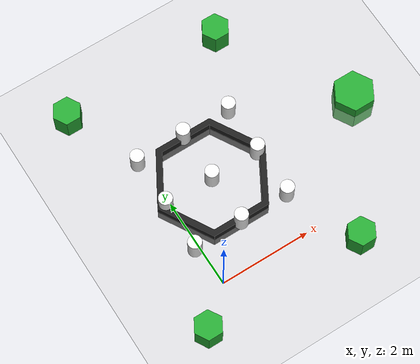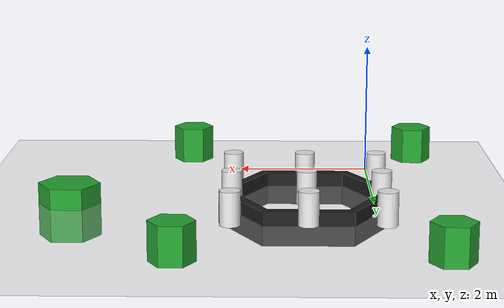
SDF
<?xml version="1.0"?>
<sdf version="1.6">
  <world name="default">

    <plugin
      filename="gz-sim-physics-system"
      name="gz::sim::systems::Physics">
    </plugin>
    <plugin
      filename="gz-sim-user-commands-system"
      name="gz::sim::systems::UserCommands">
    </plugin>
    <plugin
      filename="gz-sim-scene-broadcaster-system"
      name="gz::sim::systems::SceneBroadcaster">
    </plugin>
    <plugin
      filename="gz-sim-sensors-system"
      name="gz::sim::systems::Sensors">
      <render_engine>ogre2</render_engine>
    </plugin>
    <plugin
      filename="gz-sim-imu-system"
      name="gz::sim::systems::Imu">
    </plugin>

    <include>
      <uri>https://fuel.gazebosim.org/1.0/OpenRobotics/models/Ground Plane</uri>
    </include>

    <include>
      <uri>https://fuel.gazebosim.org/1.0/OpenRobotics/models/Sun</uri>
    </include>

    <scene>
      <shadows>false</shadows>
    </scene>

    <physics type="ode">
      <real_time_update_rate>1000.0</real_time_update_rate>
      <max_step_size>0.001</max_step_size>
      <real_time_factor>1</real_time_factor>
      <ode>
        <solver>
          <type>quick</type>
          <iters>150</iters>
          <precon_iters>0</precon_iters>
          <sor>1.400000</sor>
          <use_dynamic_moi_rescaling>1</use_dynamic_moi_rescaling>
        </solver>
        <constraints>
          <cfm>0.00001</cfm>
          <erp>0.2</erp>
          <contact_max_correcting_vel>2000.000000</contact_max_correcting_vel>
          <contact_surface_layer>0.01000</contact_surface_layer>
        </constraints>
      </ode>
    </physics>

    <!-- model://hexa resolves via GZ_SIM_RESOURCE_PATH pointing at
         ros_dd_gazebo/models (set in ros_dd.launch.py), same as before. -->
    <include>
      <uri>model://hexa</uri>
      <pose>1.0 2.0 0 0 0 0</pose>
    </include>

  </world>
</sdf>

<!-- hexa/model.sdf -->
<sdf version='1.6'>
    <!-- Draw Circle -->
    <model name='hexa'>
      <static>1</static>
      <link name='symbol'>
        <collision name='one_one'>
          <pose>-1.1 -1.1 0.25 0 0 0</pose>
          <geometry>
            <cylinder>
              <radius>0.15</radius>
              <length>0.5</length>
            </cylinder>
          </geometry>
          <max_contacts>10</max_contacts>
          <surface>
            <bounce/>
            <friction>
              <ode/>
            </friction>
            <contact>
              <ode/>
            </contact>
          </surface>
        </collision>

        <visual name='one_one'>
          <pose>-1.1 -1.1 0.25 0 0 0</pose>
          <geometry>
            <cylinder>
              <radius>0.15</radius>
              <length>0.5</length>
            </cylinder>
          </geometry>
          <material>
            <script>
              <uri>file://media/materials/scripts/gazebo.material</uri>
              <name>Gazebo/White</name>
            </script>
          </material>
        </visual>

        <collision name='one_two'>
          <pose>-1.1 0 0.25 0 0 0</pose>
          <geometry>
            <cylinder>
              <radius>0.15</radius>
              <length>0.5</length>
            </cylinder>
          </geometry>
          <max_contacts>10</max_contacts>
          <surface>
            <bounce/>
            <friction>
              <ode/>
            </friction>
            <contact>
              <ode/>
            </contact>
          </surface>
        </collision>

        <visual name='one_two'>
          <pose>-1.1 0 0.25 0 0 0</pose>
          <geometry>
            <cylinder>
              <radius>0.15</radius>
              <length>0.5</length>
            </cylinder>
          </geometry>
          <material>
            <script>
              <uri>file://media/materials/scripts/gazebo.material</uri>
              <name>Gazebo/White</name>
            </script>
          </material>
        </visual>

        <collision name='one_three'>
          <pose>-1.1 1.1 0.25 0 0 0</pose>
          <geometry>
            <cylinder>
              <radius>0.15</radius>
              <length>0.5</length>
            </cylinder>
          </geometry>
          <max_contacts>10</max_contacts>
          <surface>
            <bounce/>
            <friction>
              <ode/>
            </friction>
            <contact>
              <ode/>
            </contact>
          </surface>
        </collision>

        <visual name='one_three'>
          <pose>-1.1 1.1 0.25 0 0 0</pose>
          <geometry>
            <cylinder>
              <radius>0.15</radius>
              <length>0.5</length>
            </cylinder>
          </geometry>
          <material>
            <script>
              <uri>file://media/materials/scripts/gazebo.material</uri>
              <name>Gazebo/White</name>
            </script>
          </material>
        </visual>

        <collision name='two_one'>
          <pose>0 -1.1 0.25 0 0 0</pose>
          <geometry>
            <cylinder>
              <radius>0.15</radius>
              <length>0.5</length>
            </cylinder>
          </geometry>
          <max_contacts>10</max_contacts>
          <surface>
            <bounce/>
            <friction>
              <ode/>
            </friction>
            <contact>
              <ode/>
            </contact>
          </surface>
        </collision>

        <visual name='two_one'>
          <pose>0 -1.1 0.25 0 0 0</pose>
          <geometry>
            <cylinder>
              <radius>0.15</radius>
              <length>0.5</length>
            </cylinder>
          </geometry>
          <material>
            <script>
              <uri>file://media/materials/scripts/gazebo.material</uri>
              <name>Gazebo/White</name>
            </script>
          </material>
        </visual>

        <collision name='two_two'>
          <pose>0 0 0.25 0 0 0</pose>
          <geometry>
            <cylinder>
              <radius>0.15</radius>
              <length>0.5</length>
            </cylinder>
          </geometry>
          <max_contacts>10</max_contacts>
          <surface>
            <bounce/>
            <friction>
              <ode/>
            </friction>
            <contact>
              <ode/>
            </contact>
          </surface>
        </collision>

        <visual name='two_two'>
          <pose>0 0 0.25 0 0 0</pose>
          <geometry>
            <cylinder>
              <radius>0.15</radius>
              <length>0.5</length>
            </cylinder>
          </geometry>
          <material>
            <script>
              <uri>file://media/materials/scripts/gazebo.material</uri>
              <name>Gazebo/White</name>
            </script>
          </material>
        </visual>

        <collision name='two_three'>
          <pose>0 1.1 0.25 0 0 0</pose>
          <geometry>
            <cylinder>
              <radius>0.15</radius>
              <length>0.5</length>
            </cylinder>
          </geometry>
          <max_contacts>10</max_contacts>
          <surface>
            <bounce/>
            <friction>
              <ode/>
            </friction>
            <contact>
              <ode/>
            </contact>
          </surface>
        </collision>

        <visual name='two_three'>
          <pose>0 1.1 0.25 0 0 0</pose>
          <geometry>
            <cylinder>
              <radius>0.15</radius>
              <length>0.5</length>
            </cylinder>
          </geometry>
          <material>
            <script>
              <uri>file://media/materials/scripts/gazebo.material</uri>
              <name>Gazebo/White</name>
            </script>
          </material>
        </visual>

        <collision name='three_one'>
          <pose>1.1 -1.1 0.25 0 0 0</pose>
          <geometry>
            <cylinder>
              <radius>0.15</radius>
              <length>0.5</length>
            </cylinder>
          </geometry>
          <max_contacts>10</max_contacts>
          <surface>
            <bounce/>
            <friction>
              <ode/>
            </friction>
            <contact>
              <ode/>
            </contact>
          </surface>
        </collision>

        <visual name='three_one'>
          <pose>1.1 -1.1 0.25 0 0 0</pose>
          <geometry>
            <cylinder>
              <radius>0.15</radius>
              <length>0.5</length>
            </cylinder>
          </geometry>
          <material>
            <script>
              <uri>file://media/materials/scripts/gazebo.material</uri>
              <name>Gazebo/White</name>
            </script>
          </material>
        </visual>

        <collision name='three_two'>
          <pose>1.1 0 0.25 0 0 0</pose>
          <geometry>
            <cylinder>
              <radius>0.15</radius>
              <length>0.5</length>
            </cylinder>
          </geometry>
          <max_contacts>10</max_contacts>
          <surface>
            <bounce/>
            <friction>
              <ode/>
            </friction>
            <contact>
              <ode/>
            </contact>
          </surface>
        </collision>

        <visual name='three_two'>
          <pose>1.1 0 0.25 0 0 0</pose>
          <geometry>
            <cylinder>
              <radius>0.15</radius>
              <length>0.5</length>
            </cylinder>
          </geometry>
          <material>
            <script>
              <uri>file://media/materials/scripts/gazebo.material</uri>
              <name>Gazebo/White</name>
            </script>
          </material>
        </visual>

        <collision name='three_three'>
          <pose>1.1 1.1 0.25 0 0 0</pose>
          <geometry>
            <cylinder>
              <radius>0.15</radius>
              <length>0.5</length>
            </cylinder>
          </geometry>
          <max_contacts>10</max_contacts>
          <surface>
            <bounce/>
            <friction>
              <ode/>
            </friction>
            <contact>
              <ode/>
            </contact>
          </surface>
        </collision>

        <visual name='three_three'>
          <pose>1.1 1.1 0.25 0 0 0</pose>
          <geometry>
            <cylinder>
              <radius>0.15</radius>
              <length>0.5</length>
            </cylinder>
          </geometry>
          <material>
            <script>
              <uri>file://media/materials/scripts/gazebo.material</uri>
              <name>Gazebo/White</name>
            </script>
          </material>
        </visual>

        <!-- Draw Hexagon -->
        <collision name='head'>
          <pose>3.5 0 -0.5 0 0 0</pose>
          <geometry>
            <mesh>
              <uri>model://hexa/meshes/hexagon.dae</uri>
              <scale>0.8 0.8 0.8</scale>
            </mesh>
          </geometry>
          <max_contacts>10</max_contacts>
          <surface>
            <bounce/>
            <friction>
              <ode/>
            </friction>
            <contact>
              <ode/>
            </contact>
          </surface>
        </collision>

        <visual name='head'>
          <pose>3.5 0 -0.5 0 0 0</pose>
          <geometry>
            <mesh>
              <uri>model://hexa/meshes/hexagon.dae</uri>
              <scale>0.8 0.8 0.8</scale>
            </mesh>
          </geometry>
          <material>
            <script>
              <uri>file://media/materials/scripts/gazebo.material</uri>
              <name>Gazebo/Green</name>
            </script>
          </material>
        </visual>

        <collision name='left_hand'>
          <pose>1.8 2.7 0 0 0 0</pose>
          <geometry>
            <mesh>
              <uri>model://hexa/meshes/hexagon.dae</uri>
              <scale>0.55 0.55 0.55</scale>
            </mesh>
          </geometry>
          <max_contacts>10</max_contacts>
          <surface>
            <bounce/>
            <friction>
              <ode/>
            </friction>
            <contact>
              <ode/>
            </contact>
          </surface>
        </collision>

        <visual name='left_hand'>
          <pose>1.8 2.7 0 0 0 0</pose>
          <geometry>
            <mesh>
              <uri>model://hexa/meshes/hexagon.dae</uri>
              <scale>0.55 0.55 0.55</scale>
            </mesh>
          </geometry>
          <material>
            <script>
              <uri>file://media/materials/scripts/gazebo.material</uri>
              <name>Gazebo/Green</name>
            </script>
          </material>
        </visual>

        <collision name='right_hand'>
          <pose>1.8 -2.7 0 0 0 0</pose>
          <geometry>
            <mesh>
              <uri>model://hexa/meshes/hexagon.dae</uri>
              <scale>0.55 0.55 0.55</scale>
            </mesh>
          </geometry>
          <max_contacts>10</max_contacts>
          <surface>
            <bounce/>
            <friction>
              <ode/>
            </friction>
            <contact>
              <ode/>
            </contact>
          </surface>
        </collision>

        <visual name='right_hand'>
          <pose>1.8 -2.7 0 0 0 0</pose>
          <geometry>
            <mesh>
              <uri>model://hexa/meshes/hexagon.dae</uri>
              <scale>0.55 0.55 0.55</scale>
            </mesh>
          </geometry>
          <material>
            <script>
              <uri>file://media/materials/scripts/gazebo.material</uri>
              <name>Gazebo/Green</name>
            </script>
          </material>
        </visual>

        <collision name='left_foot'>
          <pose>-1.8 2.7 0 0 0 0</pose>
          <geometry>
            <mesh>
              <uri>model://hexa/meshes/hexagon.dae</uri>
              <scale>0.55 0.55 0.55</scale>
            </mesh>
          </geometry>
          <max_contacts>10</max_contacts>
          <surface>
            <bounce/>
            <friction>
              <ode/>
            </friction>
            <contact>
              <ode/>
            </contact>
          </surface>
        </collision>

        <visual name='left_foot'>
          <pose>-1.8 2.7 0 0 0 0</pose>
          <geometry>
            <mesh>
              <uri>model://hexa/meshes/hexagon.dae</uri>
              <scale>0.55 0.55 0.55</scale>
            </mesh>
          </geometry>
          <material>
            <script>
              <uri>file://media/materials/scripts/gazebo.material</uri>
              <name>Gazebo/Green</name>
            </script>
          </material>
        </visual>

        <collision name='right_foot'>
          <pose>-1.8 -2.7 0 0 0 0</pose>
          <geometry>
            <mesh>
              <uri>model://hexa/meshes/hexagon.dae</uri>
              <scale>0.55 0.55 0.55</scale>
            </mesh>
          </geometry>
          <max_contacts>10</max_contacts>
          <surface>
            <bounce/>
            <friction>
              <ode/>
            </friction>
            <contact>
              <ode/>
            </contact>
          </surface>
        </collision>

        <visual name='right_foot'>
          <pose>-1.8 -2.7 0 0 0 0</pose>
          <geometry>
            <mesh>
              <uri>model://hexa/meshes/hexagon.dae</uri>
              <scale>0.55 0.55 0.55</scale>
            </mesh>
          </geometry>
          <material>
            <script>
              <uri>file://media/materials/scripts/gazebo.material</uri>
              <name>Gazebo/Green</name>
            </script>
          </material>
        </visual>

        <!-- Draw Wall -->
        <collision name='body'>
        <pose>0 0 -0.3 0 0 -1.5708</pose>
        <geometry>
          <mesh>
            <uri>model://hexa/meshes/wall.dae</uri>
            <scale>0.25 0.25 0.25</scale>
          </mesh>
        </geometry>
        <max_contacts>10</max_contacts>
        <surface>
          <bounce/>
          <friction>
            <ode/>
          </friction>
          <contact>
            <ode/>
          </contact>
        </surface>
      </collision>

      <visual name='body'>
        <pose>0 0 -0.3 0 0 -1.5708</pose>
        <geometry>
          <mesh>
            <uri>model://hexa/meshes/wall.dae</uri>
            <scale>0.25 0.25 0.25</scale>
          </mesh>
        </geometry>
        <material>
          <script>
            <uri>file://media/materials/scripts/gazebo.material</uri>
            <name>Gazebo/FlatBlack</name>
          </script>
        </material>
      </visual>
    </link>
  </model>
</sdf>
